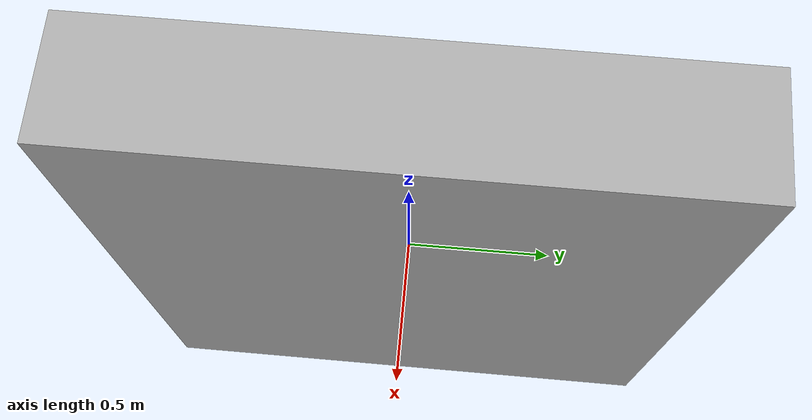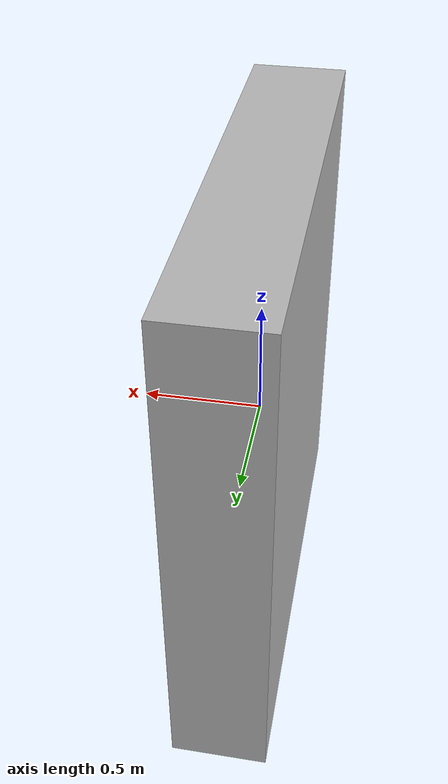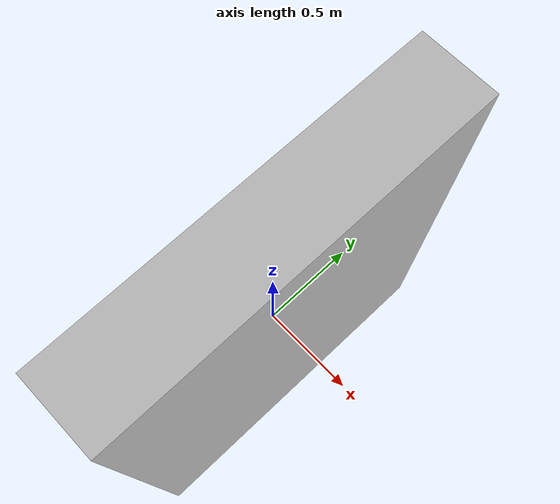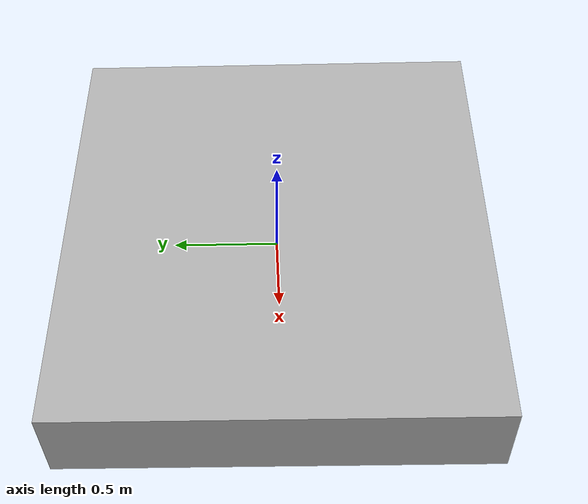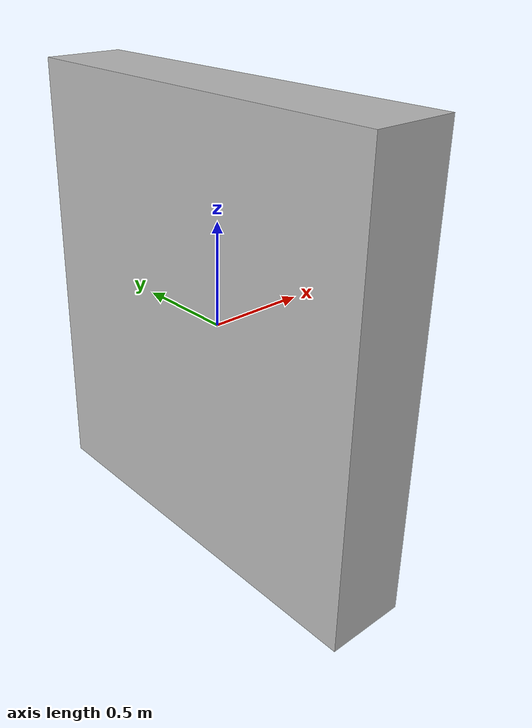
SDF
<?xml version='1.0'?>
<sdf version='1.5'>
  <model name='aruco_marker1'>

    <link name='marker'>
      <pose frame=''>0 0 0 0 0 0</pose>
      <inertial>
        <mass>1</mass>
        </inertial>
        <collision name="collision">
          <geometry>
            <mesh>
              <uri>model://aruco_marker1/meshes/aruco_1_collision.DAE</uri>
            </mesh>
          </geometry>
        </collision>

        <visual name="visual">
          <geometry>
            <mesh>
              <uri>model://aruco_marker1/meshes/aruco_1_visual.DAE</uri>
            </mesh>
          </geometry>
        </visual>
    </link>

  </model>
</sdf>
